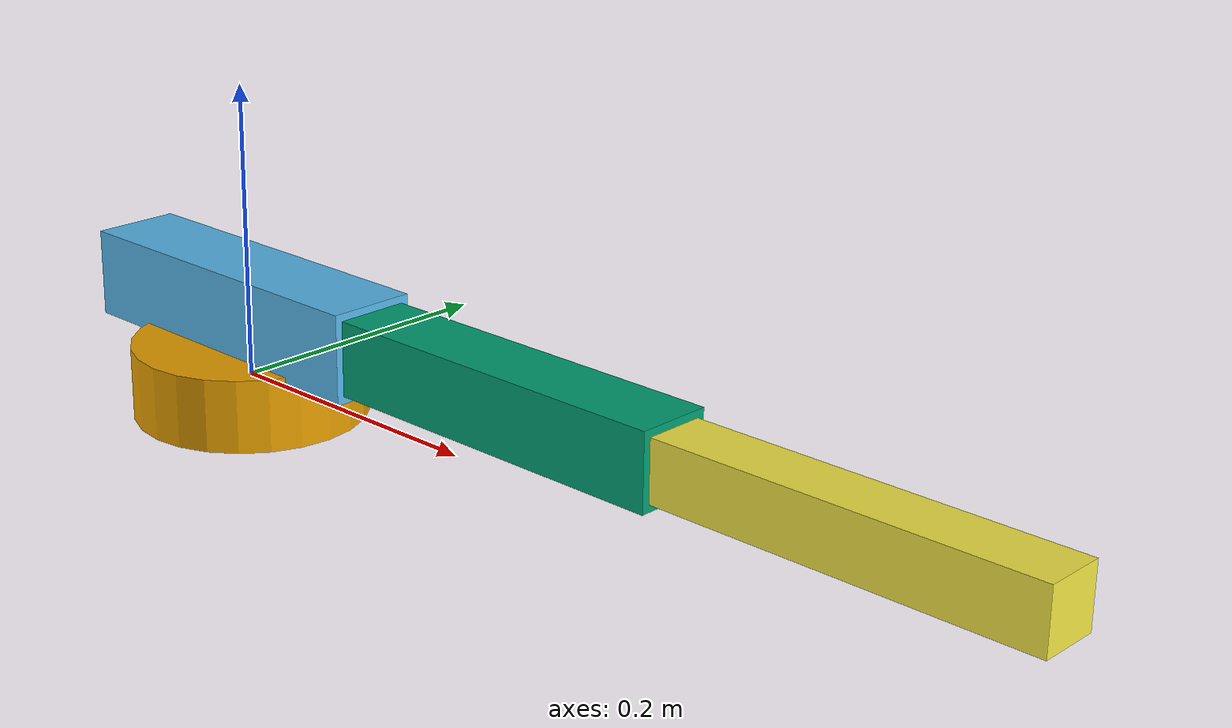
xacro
<?xml version="1.0"?>

<robot name="3dof_arm" xmlns:xacro="http://www.ros.org/wiki/xacro">
  <xacro:property name="link_length" value="0.25"/>

  <link name="base_link">
    <visual><geometry><cylinder length="0.05" radius="0.08"/></geometry></visual>
    <collision><geometry><cylinder length="0.05" radius="0.08"/></geometry></collision>
    <inertial><mass value="1.0"/></inertial>
  </link>

  <link name="link1">
    <visual><geometry><box size="${link_length} 0.06 0.06"/></geometry></visual>
    <collision><geometry><box size="${link_length} 0.06 0.06"/></geometry></collision>
    <inertial><mass value="0.5"/></inertial>
  </link>
  <joint name="joint1" type="revolute">
    <parent link="base_link"/>
    <child link="link1"/>
    <origin xyz="0 0 0.05" rpy="0 0 0"/>
    <axis xyz="0 0 1"/>
    <limit effort="10" velocity="2" lower="-1.57" upper="1.57"/>
  </joint>

  <link name="link2">
    <visual><geometry><box size="${link_length} 0.05 0.05"/></geometry></visual>
    <collision><geometry><box size="${link_length} 0.05 0.05"/></geometry></collision>
    <inertial><mass value="0.5"/></inertial>
  </link>
  <joint name="joint2" type="revolute">
    <parent link="link1"/>
    <child link="link2"/>
    <origin xyz="${link_length} 0 0" rpy="0 0 0"/>
    <axis xyz="0 1 0"/>
    <limit effort="10" velocity="2" lower="-1.57" upper="1.57"/>
  </joint>

  <link name="link3">
    <visual><geometry><box size="${link_length} 0.04 0.04"/></geometry></visual>
    <collision><geometry><box size="${link_length} 0.04 0.04"/></geometry></collision>
    <inertial><mass value="0.3"/></inertial>
  </link>
  <joint name="joint3" type="revolute">
    <parent link="link2"/>
    <child link="link3"/>
    <origin xyz="${link_length} 0 0" rpy="0 0 0"/>
    <axis xyz="0 1 0"/>
    <limit effort="8" velocity="2" lower="-1.57" upper="1.57"/>
  </joint>

</robot>
